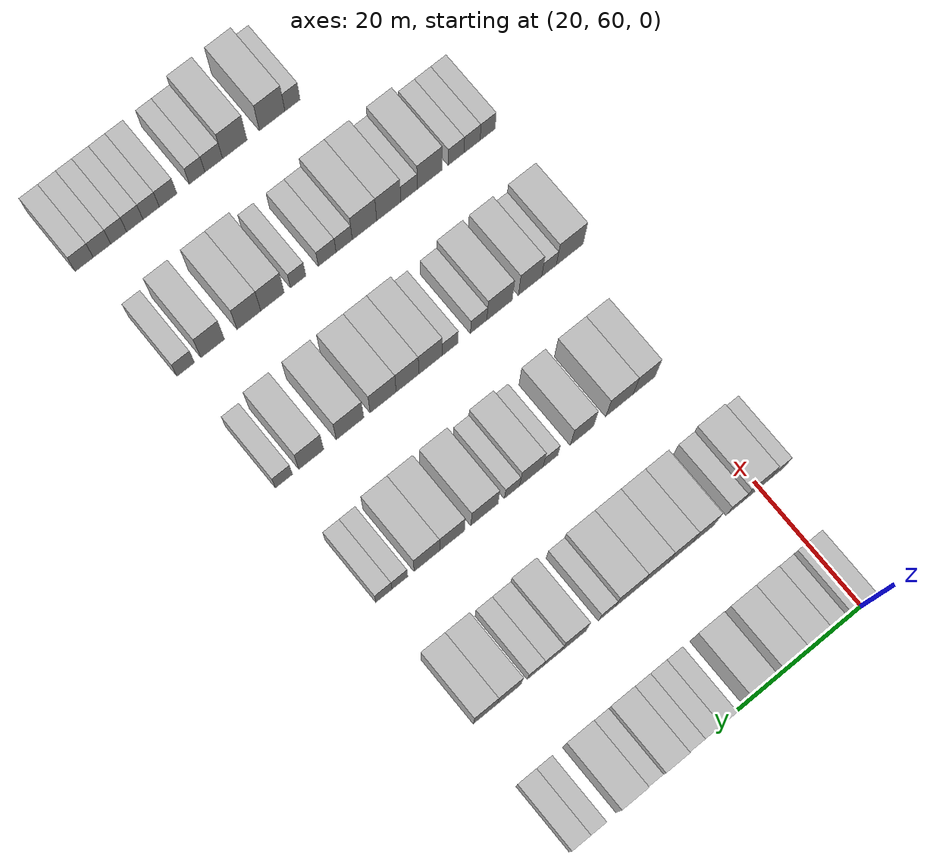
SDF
<sdf version="1.6">
 <world name="default">
  <model name="building_98">
   <static>1</static>
   <pose>25.0000 61.4927 0 0.000000 0.000000 0.000000</pose>
   <link name="link">
    <pose>0 0 4.50 0 0 0</pose>
    <collision name="collision"><geometry><box><size>10.0000 3.8759 9.0000</size></box></geometry></collision>
    <visual name="visual">
     <cast_shadows>0</cast_shadows>
     <geometry><box><size>10.0000 3.8759 9.0000</size></box></geometry>
     <material>
      <script>
       <uri>model://HANNAS_wall/materials/scripts</uri>
       <uri>model://HANNAS_wall/materials/textures</uri>
       <name>vrc/HANNAS_wall</name>
      </script>
     </material>
    </visual>
   </link>
  </model>
  <model name="building_99">
   <static>1</static>
   <pose>25.0000 64.9183 0 0.000000 0.000000 0.000000</pose>
   <link name="link">
    <pose>0 0 3.00 0 0 0</pose>
    <collision name="collision"><geometry><box><size>10.0000 2.9754 6.0000</size></box></geometry></collision>
    <visual name="visual">
     <cast_shadows>0</cast_shadows>
     <geometry><box><size>10.0000 2.9754 6.0000</size></box></geometry>
     <material>
      <script>
       <uri>model://HANNAS_wall/materials/scripts</uri>
       <uri>model://HANNAS_wall/materials/textures</uri>
       <name>vrc/HANNAS_wall</name>
      </script>
     </material>
    </visual>
   </link>
  </model>
  <model name="building_100">
   <static>1</static>
   <pose>25.0000 68.2131 0 0.000000 0.000000 0.000000</pose>
   <link name="link">
    <pose>0 0 4.50 0 0 0</pose>
    <collision name="collision"><geometry><box><size>10.0000 3.6142 9.0000</size></box></geometry></collision>
    <visual name="visual">
     <cast_shadows>0</cast_shadows>
     <geometry><box><size>10.0000 3.6142 9.0000</size></box></geometry>
     <material>
      <script>
       <uri>model://HANNAS_wall/materials/scripts</uri>
       <uri>model://HANNAS_wall/materials/textures</uri>
       <name>vrc/HANNAS_wall</name>
      </script>
     </material>
    </visual>
   </link>
  </model>
  <model name="building_101">
   <static>1</static>
   <pose>25.0000 72.0056 0 0.000000 0.000000 0.000000</pose>
   <link name="link">
    <pose>0 0 4.50 0 0 0</pose>
    <collision name="collision"><geometry><box><size>10.0000 3.9708 9.0000</size></box></geometry></collision>
    <visual name="visual">
     <cast_shadows>0</cast_shadows>
     <geometry><box><size>10.0000 3.9708 9.0000</size></box></geometry>
     <material>
      <script>
       <uri>model://HANNAS_wall/materials/scripts</uri>
       <uri>model://HANNAS_wall/materials/textures</uri>
       <name>vrc/HANNAS_wall</name>
      </script>
     </material>
    </visual>
   </link>
  </model>
  <model name="building_102">
   <static>1</static>
   <pose>25.0000 77.0309 0 0.000000 0.000000 0.000000</pose>
   <link name="link">
    <pose>0 0 4.50 0 0 0</pose>
    <collision name="collision"><geometry><box><size>10.0000 4.0799 9.0000</size></box></geometry></collision>
    <visual name="visual">
     <cast_shadows>0</cast_shadows>
     <geometry><box><size>10.0000 4.0799 9.0000</size></box></geometry>
     <material>
      <script>
       <uri>model://HANNAS_wall/materials/scripts</uri>
       <uri>model://HANNAS_wall/materials/textures</uri>
       <name>vrc/HANNAS_wall</name>
      </script>
     </material>
    </visual>
   </link>
  </model>
  <model name="building_103">
   <static>1</static>
   <pose>25.0000 82.3120 0 0.000000 0.000000 0.000000</pose>
   <link name="link">
    <pose>0 0 3.00 0 0 0</pose>
    <collision name="collision"><geometry><box><size>10.0000 2.4821 6.0000</size></box></geometry></collision>
    <visual name="visual">
     <cast_shadows>0</cast_shadows>
     <geometry><box><size>10.0000 2.4821 6.0000</size></box></geometry>
     <material>
      <script>
       <uri>model://HANNAS_wall/materials/scripts</uri>
       <uri>model://HANNAS_wall/materials/textures</uri>
       <name>vrc/HANNAS_wall</name>
      </script>
     </material>
    </visual>
   </link>
  </model>
  <model name="building_104">
   <static>1</static>
   <pose>25.0000 84.8294 0 0.000000 0.000000 0.000000</pose>
   <link name="link">
    <pose>0 0 3.00 0 0 0</pose>
    <collision name="collision"><geometry><box><size>10.0000 2.5528 6.0000</size></box></geometry></collision>
    <visual name="visual">
     <cast_shadows>0</cast_shadows>
     <geometry><box><size>10.0000 2.5528 6.0000</size></box></geometry>
     <material>
      <script>
       <uri>model://HANNAS_wall/materials/scripts</uri>
       <uri>model://HANNAS_wall/materials/textures</uri>
       <name>vrc/HANNAS_wall</name>
      </script>
     </material>
    </visual>
   </link>
  </model>
  <model name="building_105">
   <static>1</static>
   <pose>25.0000 87.5143 0 0.000000 0.000000 0.000000</pose>
   <link name="link">
    <pose>0 0 3.00 0 0 0</pose>
    <collision name="collision"><geometry><box><size>10.0000 2.8171 6.0000</size></box></geometry></collision>
    <visual name="visual">
     <cast_shadows>0</cast_shadows>
     <geometry><box><size>10.0000 2.8171 6.0000</size></box></geometry>
     <material>
      <script>
       <uri>model://HANNAS_wall/materials/scripts</uri>
       <uri>model://HANNAS_wall/materials/textures</uri>
       <name>vrc/HANNAS_wall</name>
      </script>
     </material>
    </visual>
   </link>
  </model>
  <model name="building_106">
   <static>1</static>
   <pose>25.0000 90.7783 0 0.000000 0.000000 0.000000</pose>
   <link name="link">
    <pose>0 0 4.50 0 0 0</pose>
    <collision name="collision"><geometry><box><size>10.0000 3.7109 9.0000</size></box></geometry></collision>
    <visual name="visual">
     <cast_shadows>0</cast_shadows>
     <geometry><box><size>10.0000 3.7109 9.0000</size></box></geometry>
     <material>
      <script>
       <uri>model://HANNAS_wall/materials/scripts</uri>
       <uri>model://HANNAS_wall/materials/textures</uri>
       <name>vrc/HANNAS_wall</name>
      </script>
     </material>
    </visual>
   </link>
  </model>
  <model name="building_107">
   <static>1</static>
   <pose>25.0000 93.9202 0 0.000000 0.000000 0.000000</pose>
   <link name="link">
    <pose>0 0 3.00 0 0 0</pose>
    <collision name="collision"><geometry><box><size>10.0000 2.5727 6.0000</size></box></geometry></collision>
    <visual name="visual">
     <cast_shadows>0</cast_shadows>
     <geometry><box><size>10.0000 2.5727 6.0000</size></box></geometry>
     <material>
      <script>
       <uri>model://HANNAS_wall/materials/scripts</uri>
       <uri>model://HANNAS_wall/materials/textures</uri>
       <name>vrc/HANNAS_wall</name>
      </script>
     </material>
    </visual>
   </link>
  </model>
  <model name="building_108">
   <static>1</static>
   <pose>25.0000 97.2905 0 0.000000 0.000000 0.000000</pose>
   <link name="link">
    <pose>0 0 4.50 0 0 0</pose>
    <collision name="collision"><geometry><box><size>10.0000 4.1680 9.0000</size></box></geometry></collision>
    <visual name="visual">
     <cast_shadows>0</cast_shadows>
     <geometry><box><size>10.0000 4.1680 9.0000</size></box></geometry>
     <material>
      <script>
       <uri>model://HANNAS_wall/materials/scripts</uri>
       <uri>model://HANNAS_wall/materials/textures</uri>
       <name>vrc/HANNAS_wall</name>
      </script>
     </material>
    </visual>
   </link>
  </model>
  <model name="building_109">
   <static>1</static>
   <pose>25.0000 102.5817 0 0.000000 0.000000 0.000000</pose>
   <link name="link">
    <pose>0 0 3.00 0 0 0</pose>
    <collision name="collision"><geometry><box><size>10.0000 2.4144 6.0000</size></box></geometry></collision>
    <visual name="visual">
     <cast_shadows>0</cast_shadows>
     <geometry><box><size>10.0000 2.4144 6.0000</size></box></geometry>
     <material>
      <script>
       <uri>model://HANNAS_wall/materials/scripts</uri>
       <uri>model://HANNAS_wall/materials/textures</uri>
       <name>vrc/HANNAS_wall</name>
      </script>
     </material>
    </visual>
   </link>
  </model>
  <model name="building_110">
   <static>1</static>
   <pose>25.0000 105.2487 0 0.000000 0.000000 0.000000</pose>
   <link name="link">
    <pose>0 0 3.00 0 0 0</pose>
    <collision name="collision"><geometry><box><size>10.0000 2.9196 6.0000</size></box></geometry></collision>
    <visual name="visual">
     <cast_shadows>0</cast_shadows>
     <geometry><box><size>10.0000 2.9196 6.0000</size></box></geometry>
     <material>
      <script>
       <uri>model://HANNAS_wall/materials/scripts</uri>
       <uri>model://HANNAS_wall/materials/textures</uri>
       <name>vrc/HANNAS_wall</name>
      </script>
     </material>
    </visual>
   </link>
  </model>
  <model name="building_272">
   <static>1</static>
   <pose>44.0000 57.1126 0 0.000000 0.000000 0.000000</pose>
   <link name="link">
    <pose>0 0 3.00 0 0 0</pose>
    <collision name="collision"><geometry><box><size>10.0000 2.6679 6.0000</size></box></geometry></collision>
    <visual name="visual">
     <cast_shadows>0</cast_shadows>
     <geometry><box><size>10.0000 2.6679 6.0000</size></box></geometry>
     <material>
      <script>
       <uri>model://HANNAS_wall/materials/scripts</uri>
       <uri>model://HANNAS_wall/materials/textures</uri>
       <name>vrc/HANNAS_wall</name>
      </script>
     </material>
    </visual>
   </link>
  </model>
  <model name="building_273">
   <static>1</static>
   <pose>44.0000 60.6479 0 0.000000 0.000000 0.000000</pose>
   <link name="link">
    <pose>0 0 4.50 0 0 0</pose>
    <collision name="collision"><geometry><box><size>10.0000 4.4027 9.0000</size></box></geometry></collision>
    <visual name="visual">
     <cast_shadows>0</cast_shadows>
     <geometry><box><size>10.0000 4.4027 9.0000</size></box></geometry>
     <material>
      <script>
       <uri>model://HANNAS_wall/materials/scripts</uri>
       <uri>model://HANNAS_wall/materials/textures</uri>
       <name>vrc/HANNAS_wall</name>
      </script>
     </material>
    </visual>
   </link>
  </model>
  <model name="building_274">
   <static>1</static>
   <pose>44.0000 64.1345 0 0.000000 0.000000 0.000000</pose>
   <link name="link">
    <pose>0 0 3.00 0 0 0</pose>
    <collision name="collision"><geometry><box><size>10.0000 2.5704 6.0000</size></box></geometry></collision>
    <visual name="visual">
     <cast_shadows>0</cast_shadows>
     <geometry><box><size>10.0000 2.5704 6.0000</size></box></geometry>
     <material>
      <script>
       <uri>model://HANNAS_wall/materials/scripts</uri>
       <uri>model://HANNAS_wall/materials/textures</uri>
       <name>vrc/HANNAS_wall</name>
      </script>
     </material>
    </visual>
   </link>
  </model>
  <model name="building_275">
   <static>1</static>
   <pose>44.0000 69.2595 0 0.000000 0.000000 0.000000</pose>
   <link name="link">
    <pose>0 0 4.50 0 0 0</pose>
    <collision name="collision"><geometry><box><size>10.0000 3.6796 9.0000</size></box></geometry></collision>
    <visual name="visual">
     <cast_shadows>0</cast_shadows>
     <geometry><box><size>10.0000 3.6796 9.0000</size></box></geometry>
     <material>
      <script>
       <uri>model://HANNAS_wall/materials/scripts</uri>
       <uri>model://HANNAS_wall/materials/textures</uri>
       <name>vrc/HANNAS_wall</name>
      </script>
     </material>
    </visual>
   </link>
  </model>
  <model name="building_276">
   <static>1</static>
   <pose>44.0000 73.0228 0 0.000000 0.000000 0.000000</pose>
   <link name="link">
    <pose>0 0 4.50 0 0 0</pose>
    <collision name="collision"><geometry><box><size>10.0000 3.8469 9.0000</size></box></geometry></collision>
    <visual name="visual">
     <cast_shadows>0</cast_shadows>
     <geometry><box><size>10.0000 3.8469 9.0000</size></box></geometry>
     <material>
      <script>
       <uri>model://HANNAS_wall/materials/scripts</uri>
       <uri>model://HANNAS_wall/materials/textures</uri>
       <name>vrc/HANNAS_wall</name>
      </script>
     </material>
    </visual>
   </link>
  </model>
  <model name="building_277">
   <static>1</static>
   <pose>44.0000 76.9959 0 0.000000 0.000000 0.000000</pose>
   <link name="link">
    <pose>0 0 4.50 0 0 0</pose>
    <collision name="collision"><geometry><box><size>10.0000 4.0994 9.0000</size></box></geometry></collision>
    <visual name="visual">
     <cast_shadows>0</cast_shadows>
     <geometry><box><size>10.0000 4.0994 9.0000</size></box></geometry>
     <material>
      <script>
       <uri>model://HANNAS_wall/materials/scripts</uri>
       <uri>model://HANNAS_wall/materials/textures</uri>
       <name>vrc/HANNAS_wall</name>
      </script>
     </material>
    </visual>
   </link>
  </model>
  <model name="building_278">
   <static>1</static>
   <pose>44.0000 81.2911 0 0.000000 0.000000 0.000000</pose>
   <link name="link">
    <pose>0 0 4.50 0 0 0</pose>
    <collision name="collision"><geometry><box><size>10.0000 4.4910 9.0000</size></box></geometry></collision>
    <visual name="visual">
     <cast_shadows>0</cast_shadows>
     <geometry><box><size>10.0000 4.4910 9.0000</size></box></geometry>
     <material>
      <script>
       <uri>model://HANNAS_wall/materials/scripts</uri>
       <uri>model://HANNAS_wall/materials/textures</uri>
       <name>vrc/HANNAS_wall</name>
      </script>
     </material>
    </visual>
   </link>
  </model>
  <model name="building_279">
   <static>1</static>
   <pose>44.0000 84.8208 0 0.000000 0.000000 0.000000</pose>
   <link name="link">
    <pose>0 0 3.00 0 0 0</pose>
    <collision name="collision"><geometry><box><size>10.0000 2.5684 6.0000</size></box></geometry></collision>
    <visual name="visual">
     <cast_shadows>0</cast_shadows>
     <geometry><box><size>10.0000 2.5684 6.0000</size></box></geometry>
     <material>
      <script>
       <uri>model://HANNAS_wall/materials/scripts</uri>
       <uri>model://HANNAS_wall/materials/textures</uri>
       <name>vrc/HANNAS_wall</name>
      </script>
     </material>
    </visual>
   </link>
  </model>
  <model name="building_280">
   <static>1</static>
   <pose>44.0000 90.0420 0 0.000000 0.000000 0.000000</pose>
   <link name="link">
    <pose>0 0 4.50 0 0 0</pose>
    <collision name="collision"><geometry><box><size>10.0000 3.8740 9.0000</size></box></geometry></collision>
    <visual name="visual">
     <cast_shadows>0</cast_shadows>
     <geometry><box><size>10.0000 3.8740 9.0000</size></box></geometry>
     <material>
      <script>
       <uri>model://HANNAS_wall/materials/scripts</uri>
       <uri>model://HANNAS_wall/materials/textures</uri>
       <name>vrc/HANNAS_wall</name>
      </script>
     </material>
    </visual>
   </link>
  </model>
  <model name="building_281">
   <static>1</static>
   <pose>44.0000 93.4258 0 0.000000 0.000000 0.000000</pose>
   <link name="link">
    <pose>0 0 3.00 0 0 0</pose>
    <collision name="collision"><geometry><box><size>10.0000 2.8937 6.0000</size></box></geometry></collision>
    <visual name="visual">
     <cast_shadows>0</cast_shadows>
     <geometry><box><size>10.0000 2.8937 6.0000</size></box></geometry>
     <material>
      <script>
       <uri>model://HANNAS_wall/materials/scripts</uri>
       <uri>model://HANNAS_wall/materials/textures</uri>
       <name>vrc/HANNAS_wall</name>
      </script>
     </material>
    </visual>
   </link>
  </model>
  <model name="building_282">
   <static>1</static>
   <pose>44.0000 96.1514 0 0.000000 0.000000 0.000000</pose>
   <link name="link">
    <pose>0 0 3.00 0 0 0</pose>
    <collision name="collision"><geometry><box><size>10.0000 2.5575 6.0000</size></box></geometry></collision>
    <visual name="visual">
     <cast_shadows>0</cast_shadows>
     <geometry><box><size>10.0000 2.5575 6.0000</size></box></geometry>
     <material>
      <script>
       <uri>model://HANNAS_wall/materials/scripts</uri>
       <uri>model://HANNAS_wall/materials/textures</uri>
       <name>vrc/HANNAS_wall</name>
      </script>
     </material>
    </visual>
   </link>
  </model>
  <model name="building_283">
   <static>1</static>
   <pose>44.0000 100.3159 0 0.000000 0.000000 0.000000</pose>
   <link name="link">
    <pose>0 0 4.50 0 0 0</pose>
    <collision name="collision"><geometry><box><size>10.0000 3.7716 9.0000</size></box></geometry></collision>
    <visual name="visual">
     <cast_shadows>0</cast_shadows>
     <geometry><box><size>10.0000 3.7716 9.0000</size></box></geometry>
     <material>
      <script>
       <uri>model://HANNAS_wall/materials/scripts</uri>
       <uri>model://HANNAS_wall/materials/textures</uri>
       <name>vrc/HANNAS_wall</name>
      </script>
     </material>
    </visual>
   </link>
  </model>
  <model name="building_284">
   <static>1</static>
   <pose>44.0000 104.0687 0 0.000000 0.000000 0.000000</pose>
   <link name="link">
    <pose>0 0 4.50 0 0 0</pose>
    <collision name="collision"><geometry><box><size>10.0000 3.7340 9.0000</size></box></geometry></collision>
    <visual name="visual">
     <cast_shadows>0</cast_shadows>
     <geometry><box><size>10.0000 3.7340 9.0000</size></box></geometry>
     <material>
      <script>
       <uri>model://HANNAS_wall/materials/scripts</uri>
       <uri>model://HANNAS_wall/materials/textures</uri>
       <name>vrc/HANNAS_wall</name>
      </script>
     </material>
    </visual>
   </link>
  </model>
  <model name="building_438">
   <static>1</static>
   <pose>63.0000 62.6035 0 0.000000 0.000000 0.000000</pose>
   <link name="link">
    <pose>0 0 4.50 0 0 0</pose>
    <collision name="collision"><geometry><box><size>10.0000 3.6222 9.0000</size></box></geometry></collision>
    <visual name="visual">
     <cast_shadows>0</cast_shadows>
     <geometry><box><size>10.0000 3.6222 9.0000</size></box></geometry>
     <material>
      <script>
       <uri>model://HANNAS_wall/materials/scripts</uri>
       <uri>model://HANNAS_wall/materials/textures</uri>
       <name>vrc/HANNAS_wall</name>
      </script>
     </material>
    </visual>
   </link>
  </model>
  <model name="building_439">
   <static>1</static>
   <pose>63.0000 66.6547 0 0.000000 0.000000 0.000000</pose>
   <link name="link">
    <pose>0 0 4.50 0 0 0</pose>
    <collision name="collision"><geometry><box><size>10.0000 4.4802 9.0000</size></box></geometry></collision>
    <visual name="visual">
     <cast_shadows>0</cast_shadows>
     <geometry><box><size>10.0000 4.4802 9.0000</size></box></geometry>
     <material>
      <script>
       <uri>model://HANNAS_wall/materials/scripts</uri>
       <uri>model://HANNAS_wall/materials/textures</uri>
       <name>vrc/HANNAS_wall</name>
      </script>
     </material>
    </visual>
   </link>
  </model>
  <model name="building_440">
   <static>1</static>
   <pose>63.0000 72.7872 0 0.000000 0.000000 0.000000</pose>
   <link name="link">
    <pose>0 0 4.50 0 0 0</pose>
    <collision name="collision"><geometry><box><size>10.0000 3.7849 9.0000</size></box></geometry></collision>
    <visual name="visual">
     <cast_shadows>0</cast_shadows>
     <geometry><box><size>10.0000 3.7849 9.0000</size></box></geometry>
     <material>
      <script>
       <uri>model://HANNAS_wall/materials/scripts</uri>
       <uri>model://HANNAS_wall/materials/textures</uri>
       <name>vrc/HANNAS_wall</name>
      </script>
     </material>
    </visual>
   </link>
  </model>
  <model name="building_441">
   <static>1</static>
   <pose>63.0000 77.8861 0 0.000000 0.000000 0.000000</pose>
   <link name="link">
    <pose>0 0 3.00 0 0 0</pose>
    <collision name="collision"><geometry><box><size>10.0000 2.4129 6.0000</size></box></geometry></collision>
    <visual name="visual">
     <cast_shadows>0</cast_shadows>
     <geometry><box><size>10.0000 2.4129 6.0000</size></box></geometry>
     <material>
      <script>
       <uri>model://HANNAS_wall/materials/scripts</uri>
       <uri>model://HANNAS_wall/materials/textures</uri>
       <name>vrc/HANNAS_wall</name>
      </script>
     </material>
    </visual>
   </link>
  </model>
  <model name="building_442">
   <static>1</static>
   <pose>63.0000 81.0000 0 0.000000 0.000000 0.000000</pose>
   <link name="link">
    <pose>0 0 4.50 0 0 0</pose>
    <collision name="collision"><geometry><box><size>10.0000 3.8148 9.0000</size></box></geometry></collision>
    <visual name="visual">
     <cast_shadows>0</cast_shadows>
     <geometry><box><size>10.0000 3.8148 9.0000</size></box></geometry>
     <material>
      <script>
       <uri>model://HANNAS_wall/materials/scripts</uri>
       <uri>model://HANNAS_wall/materials/textures</uri>
       <name>vrc/HANNAS_wall</name>
      </script>
     </material>
    </visual>
   </link>
  </model>
  <model name="building_443">
   <static>1</static>
   <pose>63.0000 84.1227 0 0.000000 0.000000 0.000000</pose>
   <link name="link">
    <pose>0 0 3.00 0 0 0</pose>
    <collision name="collision"><geometry><box><size>10.0000 2.4305 6.0000</size></box></geometry></collision>
    <visual name="visual">
     <cast_shadows>0</cast_shadows>
     <geometry><box><size>10.0000 2.4305 6.0000</size></box></geometry>
     <material>
      <script>
       <uri>model://HANNAS_wall/materials/scripts</uri>
       <uri>model://HANNAS_wall/materials/textures</uri>
       <name>vrc/HANNAS_wall</name>
      </script>
     </material>
    </visual>
   </link>
  </model>
  <model name="building_444">
   <static>1</static>
   <pose>63.0000 88.5297 0 0.000000 0.000000 0.000000</pose>
   <link name="link">
    <pose>0 0 4.50 0 0 0</pose>
    <collision name="collision"><geometry><box><size>10.0000 4.3834 9.0000</size></box></geometry></collision>
    <visual name="visual">
     <cast_shadows>0</cast_shadows>
     <geometry><box><size>10.0000 4.3834 9.0000</size></box></geometry>
     <material>
      <script>
       <uri>model://HANNAS_wall/materials/scripts</uri>
       <uri>model://HANNAS_wall/materials/textures</uri>
       <name>vrc/HANNAS_wall</name>
      </script>
     </material>
    </visual>
   </link>
  </model>
  <model name="building_445">
   <static>1</static>
   <pose>63.0000 93.7103 0 0.000000 0.000000 0.000000</pose>
   <link name="link">
    <pose>0 0 4.50 0 0 0</pose>
    <collision name="collision"><geometry><box><size>10.0000 3.9778 9.0000</size></box></geometry></collision>
    <visual name="visual">
     <cast_shadows>0</cast_shadows>
     <geometry><box><size>10.0000 3.9778 9.0000</size></box></geometry>
     <material>
      <script>
       <uri>model://HANNAS_wall/materials/scripts</uri>
       <uri>model://HANNAS_wall/materials/textures</uri>
       <name>vrc/HANNAS_wall</name>
      </script>
     </material>
    </visual>
   </link>
  </model>
  <model name="building_446">
   <static>1</static>
   <pose>63.0000 97.7259 0 0.000000 0.000000 0.000000</pose>
   <link name="link">
    <pose>0 0 4.50 0 0 0</pose>
    <collision name="collision"><geometry><box><size>10.0000 4.0534 9.0000</size></box></geometry></collision>
    <visual name="visual">
     <cast_shadows>0</cast_shadows>
     <geometry><box><size>10.0000 4.0534 9.0000</size></box></geometry>
     <material>
      <script>
       <uri>model://HANNAS_wall/materials/scripts</uri>
       <uri>model://HANNAS_wall/materials/textures</uri>
       <name>vrc/HANNAS_wall</name>
      </script>
     </material>
    </visual>
   </link>
  </model>
  <model name="building_447">
   <static>1</static>
   <pose>63.0000 101.9945 0 0.000000 0.000000 0.000000</pose>
   <link name="link">
    <pose>0 0 3.00 0 0 0</pose>
    <collision name="collision"><geometry><box><size>10.0000 2.4839 6.0000</size></box></geometry></collision>
    <visual name="visual">
     <cast_shadows>0</cast_shadows>
     <geometry><box><size>10.0000 2.4839 6.0000</size></box></geometry>
     <material>
      <script>
       <uri>model://HANNAS_wall/materials/scripts</uri>
       <uri>model://HANNAS_wall/materials/textures</uri>
       <name>vrc/HANNAS_wall</name>
      </script>
     </material>
    </visual>
   </link>
  </model>
  <model name="building_448">
   <static>1</static>
   <pose>63.0000 104.5127 0 0.000000 0.000000 0.000000</pose>
   <link name="link">
    <pose>0 0 3.00 0 0 0</pose>
    <collision name="collision"><geometry><box><size>10.0000 2.5524 6.0000</size></box></geometry></collision>
    <visual name="visual">
     <cast_shadows>0</cast_shadows>
     <geometry><box><size>10.0000 2.5524 6.0000</size></box></geometry>
     <material>
      <script>
       <uri>model://HANNAS_wall/materials/scripts</uri>
       <uri>model://HANNAS_wall/materials/textures</uri>
       <name>vrc/HANNAS_wall</name>
      </script>
     </material>
    </visual>
   </link>
  </model>
  <model name="building_604">
   <static>1</static>
   <pose>82.0000 58.8202 0 0.000000 0.000000 0.000000</pose>
   <link name="link">
    <pose>0 0 4.50 0 0 0</pose>
    <collision name="collision"><geometry><box><size>10.0000 4.4606 9.0000</size></box></geometry></collision>
    <visual name="visual">
     <cast_shadows>0</cast_shadows>
     <geometry><box><size>10.0000 4.4606 9.0000</size></box></geometry>
     <material>
      <script>
       <uri>model://HANNAS_wall/materials/scripts</uri>
       <uri>model://HANNAS_wall/materials/textures</uri>
       <name>vrc/HANNAS_wall</name>
      </script>
     </material>
    </visual>
   </link>
  </model>
  <model name="building_605">
   <static>1</static>
   <pose>82.0000 62.2659 0 0.000000 0.000000 0.000000</pose>
   <link name="link">
    <pose>0 0 3.00 0 0 0</pose>
    <collision name="collision"><geometry><box><size>10.0000 2.4308 6.0000</size></box></geometry></collision>
    <visual name="visual">
     <cast_shadows>0</cast_shadows>
     <geometry><box><size>10.0000 2.4308 6.0000</size></box></geometry>
     <material>
      <script>
       <uri>model://HANNAS_wall/materials/scripts</uri>
       <uri>model://HANNAS_wall/materials/textures</uri>
       <name>vrc/HANNAS_wall</name>
      </script>
     </material>
    </visual>
   </link>
  </model>
  <model name="building_606">
   <static>1</static>
   <pose>82.0000 65.3972 0 0.000000 0.000000 0.000000</pose>
   <link name="link">
    <pose>0 0 4.50 0 0 0</pose>
    <collision name="collision"><geometry><box><size>10.0000 3.8318 9.0000</size></box></geometry></collision>
    <visual name="visual">
     <cast_shadows>0</cast_shadows>
     <geometry><box><size>10.0000 3.8318 9.0000</size></box></geometry>
     <material>
      <script>
       <uri>model://HANNAS_wall/materials/scripts</uri>
       <uri>model://HANNAS_wall/materials/textures</uri>
       <name>vrc/HANNAS_wall</name>
      </script>
     </material>
    </visual>
   </link>
  </model>
  <model name="building_607">
   <static>1</static>
   <pose>82.0000 70.4013 0 0.000000 0.000000 0.000000</pose>
   <link name="link">
    <pose>0 0 4.50 0 0 0</pose>
    <collision name="collision"><geometry><box><size>10.0000 4.1766 9.0000</size></box></geometry></collision>
    <visual name="visual">
     <cast_shadows>0</cast_shadows>
     <geometry><box><size>10.0000 4.1766 9.0000</size></box></geometry>
     <material>
      <script>
       <uri>model://HANNAS_wall/materials/scripts</uri>
       <uri>model://HANNAS_wall/materials/textures</uri>
       <name>vrc/HANNAS_wall</name>
      </script>
     </material>
    </visual>
   </link>
  </model>
  <model name="building_608">
   <static>1</static>
   <pose>82.0000 73.8309 0 0.000000 0.000000 0.000000</pose>
   <link name="link">
    <pose>0 0 3.00 0 0 0</pose>
    <collision name="collision"><geometry><box><size>10.0000 2.6825 6.0000</size></box></geometry></collision>
    <visual name="visual">
     <cast_shadows>0</cast_shadows>
     <geometry><box><size>10.0000 2.6825 6.0000</size></box></geometry>
     <material>
      <script>
       <uri>model://HANNAS_wall/materials/scripts</uri>
       <uri>model://HANNAS_wall/materials/textures</uri>
       <name>vrc/HANNAS_wall</name>
      </script>
     </material>
    </visual>
   </link>
  </model>
  <model name="building_609">
   <static>1</static>
   <pose>82.0000 78.4591 0 0.000000 0.000000 0.000000</pose>
   <link name="link">
    <pose>0 0 3.00 0 0 0</pose>
    <collision name="collision"><geometry><box><size>10.0000 2.5739 6.0000</size></box></geometry></collision>
    <visual name="visual">
     <cast_shadows>0</cast_shadows>
     <geometry><box><size>10.0000 2.5739 6.0000</size></box></geometry>
     <material>
      <script>
       <uri>model://HANNAS_wall/materials/scripts</uri>
       <uri>model://HANNAS_wall/materials/textures</uri>
       <name>vrc/HANNAS_wall</name>
      </script>
     </material>
    </visual>
   </link>
  </model>
  <model name="building_610">
   <static>1</static>
   <pose>82.0000 81.6463 0 0.000000 0.000000 0.000000</pose>
   <link name="link">
    <pose>0 0 4.50 0 0 0</pose>
    <collision name="collision"><geometry><box><size>10.0000 3.8004 9.0000</size></box></geometry></collision>
    <visual name="visual">
     <cast_shadows>0</cast_shadows>
     <geometry><box><size>10.0000 3.8004 9.0000</size></box></geometry>
     <material>
      <script>
       <uri>model://HANNAS_wall/materials/scripts</uri>
       <uri>model://HANNAS_wall/materials/textures</uri>
       <name>vrc/HANNAS_wall</name>
      </script>
     </material>
    </visual>
   </link>
  </model>
  <model name="building_611">
   <static>1</static>
   <pose>82.0000 85.3753 0 0.000000 0.000000 0.000000</pose>
   <link name="link">
    <pose>0 0 4.50 0 0 0</pose>
    <collision name="collision"><geometry><box><size>10.0000 3.6576 9.0000</size></box></geometry></collision>
    <visual name="visual">
     <cast_shadows>0</cast_shadows>
     <geometry><box><size>10.0000 3.6576 9.0000</size></box></geometry>
     <material>
      <script>
       <uri>model://HANNAS_wall/materials/scripts</uri>
       <uri>model://HANNAS_wall/materials/textures</uri>
       <name>vrc/HANNAS_wall</name>
      </script>
     </material>
    </visual>
   </link>
  </model>
  <model name="building_612">
   <static>1</static>
   <pose>82.0000 89.2978 0 0.000000 0.000000 0.000000</pose>
   <link name="link">
    <pose>0 0 4.50 0 0 0</pose>
    <collision name="collision"><geometry><box><size>10.0000 4.1875 9.0000</size></box></geometry></collision>
    <visual name="visual">
     <cast_shadows>0</cast_shadows>
     <geometry><box><size>10.0000 4.1875 9.0000</size></box></geometry>
     <material>
      <script>
       <uri>model://HANNAS_wall/materials/scripts</uri>
       <uri>model://HANNAS_wall/materials/textures</uri>
       <name>vrc/HANNAS_wall</name>
      </script>
     </material>
    </visual>
   </link>
  </model>
  <model name="building_613">
   <static>1</static>
   <pose>82.0000 94.5964 0 0.000000 0.000000 0.000000</pose>
   <link name="link">
    <pose>0 0 4.50 0 0 0</pose>
    <collision name="collision"><geometry><box><size>10.0000 4.4097 9.0000</size></box></geometry></collision>
    <visual name="visual">
     <cast_shadows>0</cast_shadows>
     <geometry><box><size>10.0000 4.4097 9.0000</size></box></geometry>
     <material>
      <script>
       <uri>model://HANNAS_wall/materials/scripts</uri>
       <uri>model://HANNAS_wall/materials/textures</uri>
       <name>vrc/HANNAS_wall</name>
      </script>
     </material>
    </visual>
   </link>
  </model>
  <model name="building_614">
   <static>1</static>
   <pose>82.0000 100.7854 0 0.000000 0.000000 0.000000</pose>
   <link name="link">
    <pose>0 0 4.50 0 0 0</pose>
    <collision name="collision"><geometry><box><size>10.0000 3.9683 9.0000</size></box></geometry></collision>
    <visual name="visual">
     <cast_shadows>0</cast_shadows>
     <geometry><box><size>10.0000 3.9683 9.0000</size></box></geometry>
     <material>
      <script>
       <uri>model://HANNAS_wall/materials/scripts</uri>
       <uri>model://HANNAS_wall/materials/textures</uri>
       <name>vrc/HANNAS_wall</name>
      </script>
     </material>
    </visual>
   </link>
  </model>
  <model name="building_615">
   <static>1</static>
   <pose>82.0000 105.1283 0 0.000000 0.000000 0.000000</pose>
   <link name="link">
    <pose>0 0 3.00 0 0 0</pose>
    <collision name="collision"><geometry><box><size>10.0000 2.7174 6.0000</size></box></geometry></collision>
    <visual name="visual">
     <cast_shadows>0</cast_shadows>
     <geometry><box><size>10.0000 2.7174 6.0000</size></box></geometry>
     <material>
      <script>
       <uri>model://HANNAS_wall/materials/scripts</uri>
       <uri>model://HANNAS_wall/materials/textures</uri>
       <name>vrc/HANNAS_wall</name>
      </script>
     </material>
    </visual>
   </link>
  </model>
  <model name="building_790">
   <static>1</static>
   <pose>101.0000 56.6812 0 0.000000 0.000000 0.000000</pose>
   <link name="link">
    <pose>0 0 3.00 0 0 0</pose>
    <collision name="collision"><geometry><box><size>10.0000 2.5129 6.0000</size></box></geometry></collision>
    <visual name="visual">
     <cast_shadows>0</cast_shadows>
     <geometry><box><size>10.0000 2.5129 6.0000</size></box></geometry>
     <material>
      <script>
       <uri>model://HANNAS_wall/materials/scripts</uri>
       <uri>model://HANNAS_wall/materials/textures</uri>
       <name>vrc/HANNAS_wall</name>
      </script>
     </material>
    </visual>
   </link>
  </model>
  <model name="building_791">
   <static>1</static>
   <pose>101.0000 59.2711 0 0.000000 0.000000 0.000000</pose>
   <link name="link">
    <pose>0 0 3.00 0 0 0</pose>
    <collision name="collision"><geometry><box><size>10.0000 2.6668 6.0000</size></box></geometry></collision>
    <visual name="visual">
     <cast_shadows>0</cast_shadows>
     <geometry><box><size>10.0000 2.6668 6.0000</size></box></geometry>
     <material>
      <script>
       <uri>model://HANNAS_wall/materials/scripts</uri>
       <uri>model://HANNAS_wall/materials/textures</uri>
       <name>vrc/HANNAS_wall</name>
      </script>
     </material>
    </visual>
   </link>
  </model>
  <model name="building_792">
   <static>1</static>
   <pose>101.0000 61.9178 0 0.000000 0.000000 0.000000</pose>
   <link name="link">
    <pose>0 0 3.00 0 0 0</pose>
    <collision name="collision"><geometry><box><size>10.0000 2.6268 6.0000</size></box></geometry></collision>
    <visual name="visual">
     <cast_shadows>0</cast_shadows>
     <geometry><box><size>10.0000 2.6268 6.0000</size></box></geometry>
     <material>
      <script>
       <uri>model://HANNAS_wall/materials/scripts</uri>
       <uri>model://HANNAS_wall/materials/textures</uri>
       <name>vrc/HANNAS_wall</name>
      </script>
     </material>
    </visual>
   </link>
  </model>
  <model name="building_793">
   <static>1</static>
   <pose>101.0000 66.2774 0 0.000000 0.000000 0.000000</pose>
   <link name="link">
    <pose>0 0 4.50 0 0 0</pose>
    <collision name="collision"><geometry><box><size>10.0000 4.0923 9.0000</size></box></geometry></collision>
    <visual name="visual">
     <cast_shadows>0</cast_shadows>
     <geometry><box><size>10.0000 4.0923 9.0000</size></box></geometry>
     <material>
      <script>
       <uri>model://HANNAS_wall/materials/scripts</uri>
       <uri>model://HANNAS_wall/materials/textures</uri>
       <name>vrc/HANNAS_wall</name>
      </script>
     </material>
    </visual>
   </link>
  </model>
  <model name="building_794">
   <static>1</static>
   <pose>101.0000 69.6832 0 0.000000 0.000000 0.000000</pose>
   <link name="link">
    <pose>0 0 3.00 0 0 0</pose>
    <collision name="collision"><geometry><box><size>10.0000 2.7192 6.0000</size></box></geometry></collision>
    <visual name="visual">
     <cast_shadows>0</cast_shadows>
     <geometry><box><size>10.0000 2.7192 6.0000</size></box></geometry>
     <material>
      <script>
       <uri>model://HANNAS_wall/materials/scripts</uri>
       <uri>model://HANNAS_wall/materials/textures</uri>
       <name>vrc/HANNAS_wall</name>
      </script>
     </material>
    </visual>
   </link>
  </model>
  <model name="building_795">
   <static>1</static>
   <pose>101.0000 73.0235 0 0.000000 0.000000 0.000000</pose>
   <link name="link">
    <pose>0 0 4.50 0 0 0</pose>
    <collision name="collision"><geometry><box><size>10.0000 3.9615 9.0000</size></box></geometry></collision>
    <visual name="visual">
     <cast_shadows>0</cast_shadows>
     <geometry><box><size>10.0000 3.9615 9.0000</size></box></geometry>
     <material>
      <script>
       <uri>model://HANNAS_wall/materials/scripts</uri>
       <uri>model://HANNAS_wall/materials/textures</uri>
       <name>vrc/HANNAS_wall</name>
      </script>
     </material>
    </visual>
   </link>
  </model>
  <model name="building_796">
   <static>1</static>
   <pose>101.0000 77.0016 0 0.000000 0.000000 0.000000</pose>
   <link name="link">
    <pose>0 0 4.50 0 0 0</pose>
    <collision name="collision"><geometry><box><size>10.0000 3.9947 9.0000</size></box></geometry></collision>
    <visual name="visual">
     <cast_shadows>0</cast_shadows>
     <geometry><box><size>10.0000 3.9947 9.0000</size></box></geometry>
     <material>
      <script>
       <uri>model://HANNAS_wall/materials/scripts</uri>
       <uri>model://HANNAS_wall/materials/textures</uri>
       <name>vrc/HANNAS_wall</name>
      </script>
     </material>
    </visual>
   </link>
  </model>
  <model name="building_797">
   <static>1</static>
   <pose>101.0000 80.3163 0 0.000000 0.000000 0.000000</pose>
   <link name="link">
    <pose>0 0 3.00 0 0 0</pose>
    <collision name="collision"><geometry><box><size>10.0000 2.6345 6.0000</size></box></geometry></collision>
    <visual name="visual">
     <cast_shadows>0</cast_shadows>
     <geometry><box><size>10.0000 2.6345 6.0000</size></box></geometry>
     <material>
      <script>
       <uri>model://HANNAS_wall/materials/scripts</uri>
       <uri>model://HANNAS_wall/materials/textures</uri>
       <name>vrc/HANNAS_wall</name>
      </script>
     </material>
    </visual>
   </link>
  </model>
  <model name="building_798">
   <static>1</static>
   <pose>101.0000 83.0859 0 0.000000 0.000000 0.000000</pose>
   <link name="link">
    <pose>0 0 3.00 0 0 0</pose>
    <collision name="collision"><geometry><box><size>10.0000 2.9048 6.0000</size></box></geometry></collision>
    <visual name="visual">
     <cast_shadows>0</cast_shadows>
     <geometry><box><size>10.0000 2.9048 6.0000</size></box></geometry>
     <material>
      <script>
       <uri>model://HANNAS_wall/materials/scripts</uri>
       <uri>model://HANNAS_wall/materials/textures</uri>
       <name>vrc/HANNAS_wall</name>
      </script>
     </material>
    </visual>
   </link>
  </model>
  <model name="building_799">
   <static>1</static>
   <pose>101.0000 87.7859 0 0.000000 0.000000 0.000000</pose>
   <link name="link">
    <pose>0 0 3.00 0 0 0</pose>
    <collision name="collision"><geometry><box><size>10.0000 2.4952 6.0000</size></box></geometry></collision>
    <visual name="visual">
     <cast_shadows>0</cast_shadows>
     <geometry><box><size>10.0000 2.4952 6.0000</size></box></geometry>
     <material>
      <script>
       <uri>model://HANNAS_wall/materials/scripts</uri>
       <uri>model://HANNAS_wall/materials/textures</uri>
       <name>vrc/HANNAS_wall</name>
      </script>
     </material>
    </visual>
   </link>
  </model>
  <model name="building_800">
   <static>1</static>
   <pose>101.0000 91.9242 0 0.000000 0.000000 0.000000</pose>
   <link name="link">
    <pose>0 0 4.50 0 0 0</pose>
    <collision name="collision"><geometry><box><size>10.0000 3.7815 9.0000</size></box></geometry></collision>
    <visual name="visual">
     <cast_shadows>0</cast_shadows>
     <geometry><box><size>10.0000 3.7815 9.0000</size></box></geometry>
     <material>
      <script>
       <uri>model://HANNAS_wall/materials/scripts</uri>
       <uri>model://HANNAS_wall/materials/textures</uri>
       <name>vrc/HANNAS_wall</name>
      </script>
     </material>
    </visual>
   </link>
  </model>
  <model name="building_801">
   <static>1</static>
   <pose>101.0000 95.7268 0 0.000000 0.000000 0.000000</pose>
   <link name="link">
    <pose>0 0 4.50 0 0 0</pose>
    <collision name="collision"><geometry><box><size>10.0000 3.8237 9.0000</size></box></geometry></collision>
    <visual name="visual">
     <cast_shadows>0</cast_shadows>
     <geometry><box><size>10.0000 3.8237 9.0000</size></box></geometry>
     <material>
      <script>
       <uri>model://HANNAS_wall/materials/scripts</uri>
       <uri>model://HANNAS_wall/materials/textures</uri>
       <name>vrc/HANNAS_wall</name>
      </script>
     </material>
    </visual>
   </link>
  </model>
  <model name="building_802">
   <static>1</static>
   <pose>101.0000 101.5248 0 0.000000 0.000000 0.000000</pose>
   <link name="link">
    <pose>0 0 4.50 0 0 0</pose>
    <collision name="collision"><geometry><box><size>10.0000 3.7723 9.0000</size></box></geometry></collision>
    <visual name="visual">
     <cast_shadows>0</cast_shadows>
     <geometry><box><size>10.0000 3.7723 9.0000</size></box></geometry>
     <material>
      <script>
       <uri>model://HANNAS_wall/materials/scripts</uri>
       <uri>model://HANNAS_wall/materials/textures</uri>
       <name>vrc/HANNAS_wall</name>
      </script>
     </material>
    </visual>
   </link>
  </model>
  <model name="building_803">
   <static>1</static>
   <pose>101.0000 105.8155 0 0.000000 0.000000 0.000000</pose>
   <link name="link">
    <pose>0 0 3.00 0 0 0</pose>
    <collision name="collision"><geometry><box><size>10.0000 2.8090 6.0000</size></box></geometry></collision>
    <visual name="visual">
     <cast_shadows>0</cast_shadows>
     <geometry><box><size>10.0000 2.8090 6.0000</size></box></geometry>
     <material>
      <script>
       <uri>model://HANNAS_wall/materials/scripts</uri>
       <uri>model://HANNAS_wall/materials/textures</uri>
       <name>vrc/HANNAS_wall</name>
      </script>
     </material>
    </visual>
   </link>
  </model>
  <model name="building_967">
   <static>1</static>
   <pose>120.0000 73.6525 0 0.000000 0.000000 0.000000</pose>
   <link name="link">
    <pose>0 0 3.00 0 0 0</pose>
    <collision name="collision"><geometry><box><size>10.0000 2.5036 6.0000</size></box></geometry></collision>
    <visual name="visual">
     <cast_shadows>0</cast_shadows>
     <geometry><box><size>10.0000 2.5036 6.0000</size></box></geometry>
     <material>
      <script>
       <uri>model://HANNAS_wall/materials/scripts</uri>
       <uri>model://HANNAS_wall/materials/textures</uri>
       <name>vrc/HANNAS_wall</name>
      </script>
     </material>
    </visual>
   </link>
  </model>
  <model name="building_968">
   <static>1</static>
   <pose>120.0000 77.0000 0 0.000000 0.000000 0.000000</pose>
   <link name="link">
    <pose>0 0 4.50 0 0 0</pose>
    <collision name="collision"><geometry><box><size>10.0000 4.1915 9.0000</size></box></geometry></collision>
    <visual name="visual">
     <cast_shadows>0</cast_shadows>
     <geometry><box><size>10.0000 4.1915 9.0000</size></box></geometry>
     <material>
      <script>
       <uri>model://HANNAS_wall/materials/scripts</uri>
       <uri>model://HANNAS_wall/materials/textures</uri>
       <name>vrc/HANNAS_wall</name>
      </script>
     </material>
    </visual>
   </link>
  </model>
  <model name="building_969">
   <static>1</static>
   <pose>120.0000 83.0961 0 0.000000 0.000000 0.000000</pose>
   <link name="link">
    <pose>0 0 4.50 0 0 0</pose>
    <collision name="collision"><geometry><box><size>10.0000 4.0006 9.0000</size></box></geometry></collision>
    <visual name="visual">
     <cast_shadows>0</cast_shadows>
     <geometry><box><size>10.0000 4.0006 9.0000</size></box></geometry>
     <material>
      <script>
       <uri>model://HANNAS_wall/materials/scripts</uri>
       <uri>model://HANNAS_wall/materials/textures</uri>
       <name>vrc/HANNAS_wall</name>
      </script>
     </material>
    </visual>
   </link>
  </model>
  <model name="building_970">
   <static>1</static>
   <pose>120.0000 86.5406 0 0.000000 0.000000 0.000000</pose>
   <link name="link">
    <pose>0 0 3.00 0 0 0</pose>
    <collision name="collision"><geometry><box><size>10.0000 2.8884 6.0000</size></box></geometry></collision>
    <visual name="visual">
     <cast_shadows>0</cast_shadows>
     <geometry><box><size>10.0000 2.8884 6.0000</size></box></geometry>
     <material>
      <script>
       <uri>model://HANNAS_wall/materials/scripts</uri>
       <uri>model://HANNAS_wall/materials/textures</uri>
       <name>vrc/HANNAS_wall</name>
      </script>
     </material>
    </visual>
   </link>
  </model>
  <model name="building_971">
   <static>1</static>
   <pose>120.0000 89.2465 0 0.000000 0.000000 0.000000</pose>
   <link name="link">
    <pose>0 0 3.00 0 0 0</pose>
    <collision name="collision"><geometry><box><size>10.0000 2.5235 6.0000</size></box></geometry></collision>
    <visual name="visual">
     <cast_shadows>0</cast_shadows>
     <geometry><box><size>10.0000 2.5235 6.0000</size></box></geometry>
     <material>
      <script>
       <uri>model://HANNAS_wall/materials/scripts</uri>
       <uri>model://HANNAS_wall/materials/textures</uri>
       <name>vrc/HANNAS_wall</name>
      </script>
     </material>
    </visual>
   </link>
  </model>
  <model name="building_972">
   <static>1</static>
   <pose>120.0000 93.9276 0 0.000000 0.000000 0.000000</pose>
   <link name="link">
    <pose>0 0 3.00 0 0 0</pose>
    <collision name="collision"><geometry><box><size>10.0000 2.8388 6.0000</size></box></geometry></collision>
    <visual name="visual">
     <cast_shadows>0</cast_shadows>
     <geometry><box><size>10.0000 2.8388 6.0000</size></box></geometry>
     <material>
      <script>
       <uri>model://HANNAS_wall/materials/scripts</uri>
       <uri>model://HANNAS_wall/materials/textures</uri>
       <name>vrc/HANNAS_wall</name>
      </script>
     </material>
    </visual>
   </link>
  </model>
  <model name="building_973">
   <static>1</static>
   <pose>120.0000 96.6615 0 0.000000 0.000000 0.000000</pose>
   <link name="link">
    <pose>0 0 3.00 0 0 0</pose>
    <collision name="collision"><geometry><box><size>10.0000 2.6290 6.0000</size></box></geometry></collision>
    <visual name="visual">
     <cast_shadows>0</cast_shadows>
     <geometry><box><size>10.0000 2.6290 6.0000</size></box></geometry>
     <material>
      <script>
       <uri>model://HANNAS_wall/materials/scripts</uri>
       <uri>model://HANNAS_wall/materials/textures</uri>
       <name>vrc/HANNAS_wall</name>
      </script>
     </material>
    </visual>
   </link>
  </model>
  <model name="building_974">
   <static>1</static>
   <pose>120.0000 99.2853 0 0.000000 0.000000 0.000000</pose>
   <link name="link">
    <pose>0 0 3.00 0 0 0</pose>
    <collision name="collision"><geometry><box><size>10.0000 2.6188 6.0000</size></box></geometry></collision>
    <visual name="visual">
     <cast_shadows>0</cast_shadows>
     <geometry><box><size>10.0000 2.6188 6.0000</size></box></geometry>
     <material>
      <script>
       <uri>model://HANNAS_wall/materials/scripts</uri>
       <uri>model://HANNAS_wall/materials/textures</uri>
       <name>vrc/HANNAS_wall</name>
      </script>
     </material>
    </visual>
   </link>
  </model>
  <model name="building_975">
   <static>1</static>
   <pose>120.0000 101.8685 0 0.000000 0.000000 0.000000</pose>
   <link name="link">
    <pose>0 0 3.00 0 0 0</pose>
    <collision name="collision"><geometry><box><size>10.0000 2.5476 6.0000</size></box></geometry></collision>
    <visual name="visual">
     <cast_shadows>0</cast_shadows>
     <geometry><box><size>10.0000 2.5476 6.0000</size></box></geometry>
     <material>
      <script>
       <uri>model://HANNAS_wall/materials/scripts</uri>
       <uri>model://HANNAS_wall/materials/textures</uri>
       <name>vrc/HANNAS_wall</name>
      </script>
     </material>
    </visual>
   </link>
  </model>
  <model name="building_976">
   <static>1</static>
   <pose>120.0000 104.5435 0 0.000000 0.000000 0.000000</pose>
   <link name="link">
    <pose>0 0 3.00 0 0 0</pose>
    <collision name="collision"><geometry><box><size>10.0000 2.8024 6.0000</size></box></geometry></collision>
    <visual name="visual">
     <cast_shadows>0</cast_shadows>
     <geometry><box><size>10.0000 2.8024 6.0000</size></box></geometry>
     <material>
      <script>
       <uri>model://HANNAS_wall/materials/scripts</uri>
       <uri>model://HANNAS_wall/materials/textures</uri>
       <name>vrc/HANNAS_wall</name>
      </script>
     </material>
    </visual>
   </link>
  </model>
  <model name="building_977">
   <static>1</static>
   <pose>120.0000 107.3997 0 0.000000 0.000000 0.000000</pose>
   <link name="link">
    <pose>0 0 3.00 0 0 0</pose>
    <collision name="collision"><geometry><box><size>10.0000 2.9100 6.0000</size></box></geometry></collision>
    <visual name="visual">
     <cast_shadows>0</cast_shadows>
     <geometry><box><size>10.0000 2.9100 6.0000</size></box></geometry>
     <material>
      <script>
       <uri>model://HANNAS_wall/materials/scripts</uri>
       <uri>model://HANNAS_wall/materials/textures</uri>
       <name>vrc/HANNAS_wall</name>
      </script>
     </material>
    </visual>
   </link>
  </model>
 </world>
</sdf>
